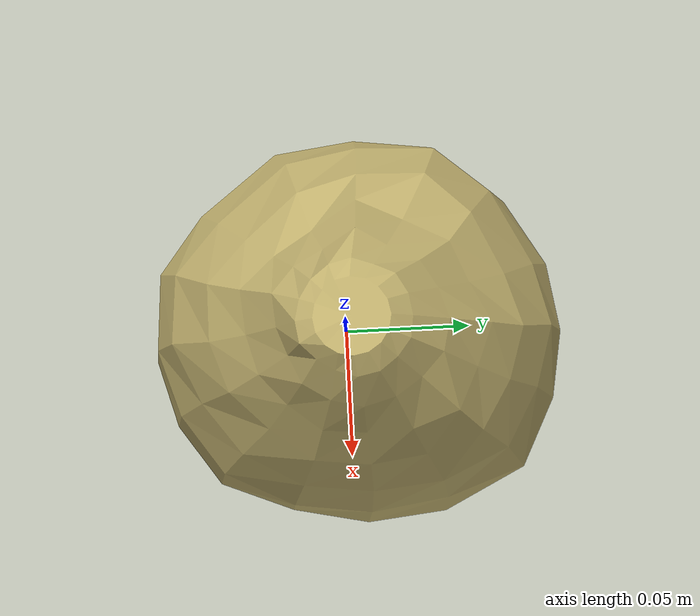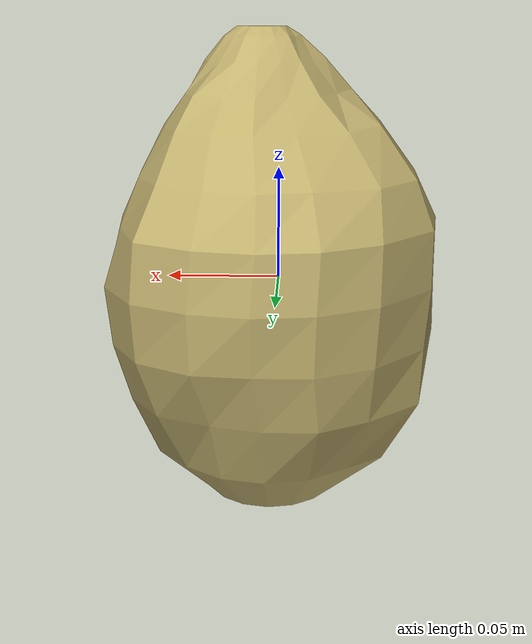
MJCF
<mujoco model="Lettuce_25">
  <compiler autolimits="true" boundmass="0.01" angle="radian"/>
  <default>
    <default class="/">
      <default class="__VISUAL_MJT__">
        <geom contype="0" conaffinity="0" group="0"/>
      </default>
      <default class="__STRUCTURAL_MJT__">
        <geom contype="8" conaffinity="15" group="4" friction="0.90000000000000002 0.90000000000000002 0.001" solref="0.025000000000000001 1" solimp="0.998 0.998 0.001"/>
      </default>
      <default class="__DYNAMIC_MJT__">
        <geom contype="1" conaffinity="15" group="4" friction="0.90000000000000002 0.90000000000000002 0.001" solref="0.025000000000000001 1" solimp="0.998 0.998 0.001"/>
      </default>
    </default>
  </default>
  <asset>
    <texture name="Lettuce3_Mat" type="2d" file="Lettuce3_AlbedoTransparency.png"/>
    <material name="material_Lettuce3_Mat" class="/" texture="Lettuce3_Mat" specular="0.5" shininess="0.5" rgba="1 0.95246359999999997 0.62735850000000004 1"/>
    <mesh name="Lettuce_25_lettuce_c5" class="/" file="Lettuce_25_lettuce_c5/Lettuce_25_lettuce_c5.obj" scale="1 1 1"/>
  </asset>
  <worldbody>
    <body name="Lettuce_25">
      <joint name="Lettuce_25_free" class="/" type="free" pos="0 0 0" axis="0 0 1" stiffness="0" range="0 0" armature="0" damping="0.10000000000000001" frictionloss="0"/>
      <body name="Lettuce_25_lettuce_c5" pos="0.00132 0.00381 -0.0028" quat="1 0 0 0">
        <geom name="Lettuce_25_lettuce_c5" class="__VISUAL_MJT__" type="mesh" material="material_Lettuce3_Mat" shellinertia="true" mesh="Lettuce_25_lettuce_c5"/>
        <geom name="Lettuce_25_PrimitiveCollider_0" class="__DYNAMIC_MJT__" type="capsule" size="0.072111882269382477 0.029584549367427826" rgba="0 1 0 1" pos="0.0013155937194824219 -0.0038605630397796631 -0.007576383650302887" quat="0.99662825211857686 -0.082049540395242482 0 0"/>
        <geom name="Lettuce_25_PrimitiveCollider_1" class="__DYNAMIC_MJT__" type="capsule" size="0.03596033900976181 1.0000000000000001e-05" rgba="0 1 0 1" pos="0.006017930805683136 -0.0017643056344240904 0.079426780343055725" quat="0.99999999999891198 1.4751396607739272e-06 0 0"/>
      </body>
    </body>
  </worldbody>
</mujoco>
